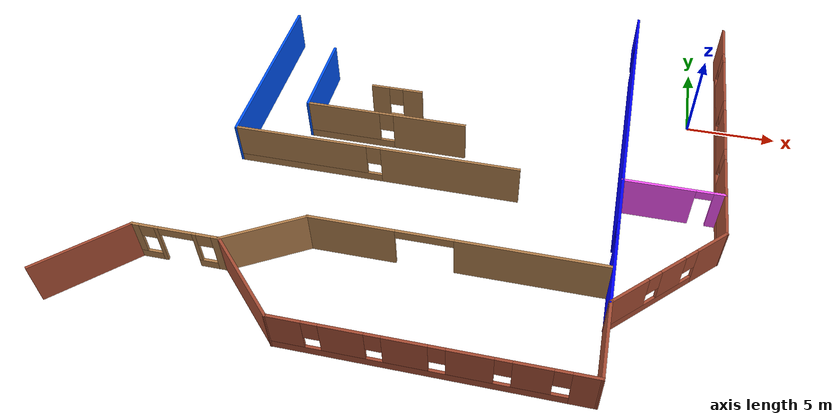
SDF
<sdf version="1.6">
 <model name="spiral_office">
  <pose>-21.9737 -0.990625 0 0 -0 0</pose>
  <link name="Wall_100">
   <pose>20.9892 -6.43138 0 0 -0 3.14159</pose>
   <visual name="Wall_100_Visual_0">
    <pose>-2.35489 0 1.25 0 -0 0</pose>
    <geometry><box><size>0.689225 0.15 2.5</size></box></geometry>
    <material>
     <script><uri>file://media/materials/scripts/gazebo.material</uri><name>Gazebo/Grey</name></script>
     <ambient>1 0.333333 1 1</ambient>
    </material>
    <meta><layer>0</layer></meta>
   </visual>
   <collision name="Wall_100_Collision_0">
    <geometry><box><size>0.689225 0.15 2.5</size></box></geometry>
    <pose>-2.35489 0 1.25 0 -0 0</pose>
   </collision>
   <visual name="Wall_100_Visual_1">
    <pose>0.794612 0 1.25 0 -0 0</pose>
    <geometry><box><size>3.80978 0.15 2.5</size></box></geometry>
    <material>
     <script><uri>file://media/materials/scripts/gazebo.material</uri><name>Gazebo/Grey</name></script>
     <ambient>1 0.333333 1 1</ambient>
    </material>
    <meta><layer>0</layer></meta>
   </visual>
   <collision name="Wall_100_Collision_1">
    <geometry><box><size>3.80978 0.15 2.5</size></box></geometry>
    <pose>0.794612 0 1.25 0 -0 0</pose>
   </collision>
   <visual name="Wall_100_Visual_2">
    <pose>-1.56028 0 2.25 0 -0 0</pose>
    <geometry><box><size>0.9 0.15 0.5</size></box></geometry>
    <material>
     <script><uri>file://media/materials/scripts/gazebo.material</uri><name>Gazebo/Grey</name></script>
     <ambient>1 0.333333 1 1</ambient>
    </material>
    <meta><layer>0</layer></meta>
   </visual>
   <collision name="Wall_100_Collision_2">
    <geometry><box><size>0.9 0.15 0.5</size></box></geometry>
    <pose>-1.56028 0 2.25 0 -0 0</pose>
   </collision>
  </link>
  <link name="Wall_102">
   <pose>10.7001 -12.2894 0 0 -0 3.14159</pose>
   <visual name="Wall_102_Visual_0">
    <pose>-3.79286 0 1.25 0 -0 0</pose>
    <geometry><box><size>7.82905 0.15 2.5</size></box></geometry>
    <material>
     <script><uri>file://media/materials/scripts/gazebo.material</uri><name>Gazebo/Wood</name></script>
     <ambient>1 1 1 1</ambient>
    </material>
    <meta><layer>0</layer></meta>
   </visual>
   <collision name="Wall_102_Collision_0">
    <geometry><box><size>7.82905 0.15 2.5</size></box></geometry>
    <pose>-3.79286 0 1.25 0 -0 0</pose>
   </collision>
   <visual name="Wall_102_Visual_1">
    <pose>5.41453 0 1.25 0 -0 0</pose>
    <geometry><box><size>4.58572 0.15 2.5</size></box></geometry>
    <material>
     <script><uri>file://media/materials/scripts/gazebo.material</uri><name>Gazebo/Wood</name></script>
     <ambient>1 1 1 1</ambient>
    </material>
    <meta><layer>0</layer></meta>
   </visual>
   <collision name="Wall_102_Collision_1">
    <geometry><box><size>4.58572 0.15 2.5</size></box></geometry>
    <pose>5.41453 0 1.25 0 -0 0</pose>
   </collision>
   <visual name="Wall_102_Visual_2">
    <pose>1.62166 0 2.25 0 -0 0</pose>
    <geometry><box><size>3 0.15 0.5</size></box></geometry>
    <material>
     <script><uri>file://media/materials/scripts/gazebo.material</uri><name>Gazebo/Wood</name></script>
     <ambient>1 1 1 1</ambient>
    </material>
    <meta><layer>0</layer></meta>
   </visual>
   <collision name="Wall_102_Collision_2">
    <geometry><box><size>3 0.15 0.5</size></box></geometry>
    <pose>1.62166 0 2.25 0 -0 0</pose>
   </collision>
  </link>
  <link name="Wall_103">
   <collision name="Wall_103_Collision">
    <geometry><box><size>4.56386 0.15 2.5</size></box></geometry>
    <pose>0 0 1.25 0 -0 0</pose>
   </collision>
   <visual name="Wall_103_Visual">
    <pose>0 0 1.25 0 -0 0</pose>
    <geometry><box><size>4.56386 0.15 2.5</size></box></geometry>
    <material>
     <script><uri>file://media/materials/scripts/gazebo.material</uri><name>Gazebo/Wood</name></script>
     <ambient>1 1 1 1</ambient>
    </material>
    <meta><layer>0</layer></meta>
   </visual>
   <pose>1.17619 -13.4264 0 0 0 -2.60036</pose>
  </link>
  <link name="Wall_17">
   <pose>23.6145 -0.624368 0 0 0 -1.5707</pose>
   <visual name="Wall_17_Visual_0">
    <pose>-7.2888 0 1.25 0 -0 0</pose>
    <geometry><box><size>2.42239 0.15 2.5</size></box></geometry>
    <material>
     <script><uri>file://media/materials/scripts/gazebo.material</uri><name>Gazebo/Bricks</name></script>
     <ambient>1 1 1 1</ambient>
    </material>
    <meta><layer>0</layer></meta>
   </visual>
   <collision name="Wall_17_Collision_0">
    <geometry><box><size>2.42239 0.15 2.5</size></box></geometry>
    <pose>-7.2888 0 1.25 0 -0 0</pose>
   </collision>
   <visual name="Wall_17_Visual_1">
    <pose>1.2112 0 0.25 0 -0 0</pose>
    <geometry><box><size>14.5776 0.15 0.5</size></box></geometry>
    <material>
     <script><uri>file://media/materials/scripts/gazebo.material</uri><name>Gazebo/Bricks</name></script>
     <ambient>1 1 1 1</ambient>
    </material>
    <meta><layer>0</layer></meta>
   </visual>
   <collision name="Wall_17_Collision_1">
    <geometry><box><size>14.5776 0.15 0.5</size></box></geometry>
    <pose>1.2112 0 0.25 0 -0 0</pose>
   </collision>
   <visual name="Wall_17_Visual_2">
    <pose>-3.48164 0 1.5 0 -0 0</pose>
    <geometry><box><size>3.59193 0.15 2</size></box></geometry>
    <material>
     <script><uri>file://media/materials/scripts/gazebo.material</uri><name>Gazebo/Bricks</name></script>
     <ambient>1 1 1 1</ambient>
    </material>
    <meta><layer>0</layer></meta>
   </visual>
   <collision name="Wall_17_Collision_2">
    <geometry><box><size>3.59193 0.15 2</size></box></geometry>
    <pose>-3.48164 0 1.5 0 -0 0</pose>
   </collision>
   <visual name="Wall_17_Visual_3">
    <pose>0.737324 0 1.5 0 -0 0</pose>
    <geometry><box><size>3.246 0.15 2</size></box></geometry>
    <material>
     <script><uri>file://media/materials/scripts/gazebo.material</uri><name>Gazebo/Bricks</name></script>
     <ambient>1 1 1 1</ambient>
    </material>
    <meta><layer>0</layer></meta>
   </visual>
   <collision name="Wall_17_Collision_3">
    <geometry><box><size>3.246 0.15 2</size></box></geometry>
    <pose>0.737324 0 1.5 0 -0 0</pose>
   </collision>
   <visual name="Wall_17_Visual_4">
    <pose>5.83016 0 1.5 0 -0 0</pose>
    <geometry><box><size>5.33968 0.15 2</size></box></geometry>
    <material>
     <script><uri>file://media/materials/scripts/gazebo.material</uri><name>Gazebo/Bricks</name></script>
     <ambient>1 1 1 1</ambient>
    </material>
    <meta><layer>0</layer></meta>
   </visual>
   <collision name="Wall_17_Collision_4">
    <geometry><box><size>5.33968 0.15 2</size></box></geometry>
    <pose>5.83016 0 1.5 0 -0 0</pose>
   </collision>
   <visual name="Wall_17_Visual_5">
    <pose>-5.67761 0 1.9 0 -0 0</pose>
    <geometry><box><size>0.8 0.15 1.2</size></box></geometry>
    <material>
     <script><uri>file://media/materials/scripts/gazebo.material</uri><name>Gazebo/Bricks</name></script>
     <ambient>1 1 1 1</ambient>
    </material>
    <meta><layer>0</layer></meta>
   </visual>
   <collision name="Wall_17_Collision_5">
    <geometry><box><size>0.8 0.15 1.2</size></box></geometry>
    <pose>-5.67761 0 1.9 0 -0 0</pose>
   </collision>
   <visual name="Wall_17_Visual_6">
    <pose>-1.28568 0 1.9 0 -0 0</pose>
    <geometry><box><size>0.8 0.15 1.2</size></box></geometry>
    <material>
     <script><uri>file://media/materials/scripts/gazebo.material</uri><name>Gazebo/Bricks</name></script>
     <ambient>1 1 1 1</ambient>
    </material>
    <meta><layer>0</layer></meta>
   </visual>
   <collision name="Wall_17_Collision_6">
    <geometry><box><size>0.8 0.15 1.2</size></box></geometry>
    <pose>-1.28568 0 1.9 0 -0 0</pose>
   </collision>
   <visual name="Wall_17_Visual_7">
    <pose>2.76032 0 1.9 0 -0 0</pose>
    <geometry><box><size>0.8 0.15 1.2</size></box></geometry>
    <material>
     <script><uri>file://media/materials/scripts/gazebo.material</uri><name>Gazebo/Bricks</name></script>
     <ambient>1 1 1 1</ambient>
    </material>
    <meta><layer>0</layer></meta>
   </visual>
   <collision name="Wall_17_Collision_7">
    <geometry><box><size>0.8 0.15 1.2</size></box></geometry>
    <pose>2.76032 0 1.9 0 -0 0</pose>
   </collision>
  </link>
  <link name="Wall_18">
   <pose>20.99 -11.6749 0 0 0 -2.35616</pose>
   <visual name="Wall_18_Visual_0">
    <pose>-2.76411 0 1.25 0 -0 0</pose>
    <geometry><box><size>2.04759 0.15 2.5</size></box></geometry>
    <material>
     <script><uri>file://media/materials/scripts/gazebo.material</uri><name>Gazebo/Bricks</name></script>
     <ambient>1 1 1 1</ambient>
    </material>
    <meta><layer>0</layer></meta>
   </visual>
   <collision name="Wall_18_Collision_0">
    <geometry><box><size>2.04759 0.15 2.5</size></box></geometry>
    <pose>-2.76411 0 1.25 0 -0 0</pose>
   </collision>
   <visual name="Wall_18_Visual_1">
    <pose>1.02379 0 0.25 0 -0 0</pose>
    <geometry><box><size>5.52823 0.15 0.5</size></box></geometry>
    <material>
     <script><uri>file://media/materials/scripts/gazebo.material</uri><name>Gazebo/Bricks</name></script>
     <ambient>1 1 1 1</ambient>
    </material>
    <meta><layer>0</layer></meta>
   </visual>
   <collision name="Wall_18_Collision_1">
    <geometry><box><size>5.52823 0.15 0.5</size></box></geometry>
    <pose>1.02379 0 0.25 0 -0 0</pose>
   </collision>
   <visual name="Wall_18_Visual_2">
    <pose>-0.167532 0 1.5 0 -0 0</pose>
    <geometry><box><size>1.54558 0.15 2</size></box></geometry>
    <material>
     <script><uri>file://media/materials/scripts/gazebo.material</uri><name>Gazebo/Bricks</name></script>
     <ambient>1 1 1 1</ambient>
    </material>
    <meta><layer>0</layer></meta>
   </visual>
   <collision name="Wall_18_Collision_2">
    <geometry><box><size>1.54558 0.15 2</size></box></geometry>
    <pose>-0.167532 0 1.5 0 -0 0</pose>
   </collision>
   <visual name="Wall_18_Visual_3">
    <pose>2.59658 0 1.5 0 -0 0</pose>
    <geometry><box><size>2.38265 0.15 2</size></box></geometry>
    <material>
     <script><uri>file://media/materials/scripts/gazebo.material</uri><name>Gazebo/Bricks</name></script>
     <ambient>1 1 1 1</ambient>
    </material>
    <meta><layer>0</layer></meta>
   </visual>
   <collision name="Wall_18_Collision_3">
    <geometry><box><size>2.38265 0.15 2</size></box></geometry>
    <pose>2.59658 0 1.5 0 -0 0</pose>
   </collision>
   <visual name="Wall_18_Visual_4">
    <pose>-1.34032 0 1.9 0 -0 0</pose>
    <geometry><box><size>0.8 0.15 1.2</size></box></geometry>
    <material>
     <script><uri>file://media/materials/scripts/gazebo.material</uri><name>Gazebo/Bricks</name></script>
     <ambient>1 1 1 1</ambient>
    </material>
    <meta><layer>0</layer></meta>
   </visual>
   <collision name="Wall_18_Collision_4">
    <geometry><box><size>0.8 0.15 1.2</size></box></geometry>
    <pose>-1.34032 0 1.9 0 -0 0</pose>
   </collision>
   <visual name="Wall_18_Visual_5">
    <pose>1.00526 0 1.9 0 -0 0</pose>
    <geometry><box><size>0.8 0.15 1.2</size></box></geometry>
    <material>
     <script><uri>file://media/materials/scripts/gazebo.material</uri><name>Gazebo/Bricks</name></script>
     <ambient>1 1 1 1</ambient>
    </material>
    <meta><layer>0</layer></meta>
   </visual>
   <collision name="Wall_18_Collision_5">
    <geometry><box><size>0.8 0.15 1.2</size></box></geometry>
    <pose>1.00526 0 1.9 0 -0 0</pose>
   </collision>
  </link>
  <link name="Wall_19">
   <collision name="Wall_19_Collision">
    <geometry><box><size>4.25 0.15 2.5</size></box></geometry>
    <pose>0 0 1.25 0 -0 0</pose>
   </collision>
   <visual name="Wall_19_Visual">
    <pose>0 0 1.25 0 -0 0</pose>
    <geometry><box><size>4.25 0.15 2.5</size></box></geometry>
    <material>
     <script><uri>file://media/materials/scripts/gazebo.material</uri><name>Gazebo/Bricks</name></script>
     <ambient>1 1 1 1</ambient>
    </material>
    <meta><layer>0</layer></meta>
   </visual>
   <pose>18.3647 -16.3504 0 0 0 -1.5708</pose>
  </link>
  <link name="Wall_20">
   <pose>10.7162 -18.3734 0 0 -0 3.13806</pose>
   <visual name="Wall_20_Visual_0">
    <pose>-7.04407 0 1.25 0 -0 0</pose>
    <geometry><box><size>1.35851 0.15 2.5</size></box></geometry>
    <material>
     <script><uri>file://media/materials/scripts/gazebo.material</uri><name>Gazebo/Bricks</name></script>
     <ambient>1 1 1 1</ambient>
    </material>
    <meta><layer>0</layer></meta>
   </visual>
   <collision name="Wall_20_Collision_0">
    <geometry><box><size>1.35851 0.15 2.5</size></box></geometry>
    <pose>-7.04407 0 1.25 0 -0 0</pose>
   </collision>
   <visual name="Wall_20_Visual_1">
    <pose>0.679257 0 0.25 0 -0 0</pose>
    <geometry><box><size>14.0881 0.15 0.5</size></box></geometry>
    <material>
     <script><uri>file://media/materials/scripts/gazebo.material</uri><name>Gazebo/Bricks</name></script>
     <ambient>1 1 1 1</ambient>
    </material>
    <meta><layer>0</layer></meta>
   </visual>
   <collision name="Wall_20_Collision_1">
    <geometry><box><size>14.0881 0.15 0.5</size></box></geometry>
    <pose>0.679257 0 0.25 0 -0 0</pose>
   </collision>
   <visual name="Wall_20_Visual_2">
    <pose>-4.65396 0 1.5 0 -0 0</pose>
    <geometry><box><size>1.8217 0.15 2</size></box></geometry>
    <material>
     <script><uri>file://media/materials/scripts/gazebo.material</uri><name>Gazebo/Bricks</name></script>
     <ambient>1 1 1 1</ambient>
    </material>
    <meta><layer>0</layer></meta>
   </visual>
   <collision name="Wall_20_Collision_2">
    <geometry><box><size>1.8217 0.15 2</size></box></geometry>
    <pose>-4.65396 0 1.5 0 -0 0</pose>
   </collision>
   <visual name="Wall_20_Visual_3">
    <pose>-1.84491 0 1.5 0 -0 0</pose>
    <geometry><box><size>2.19639 0.15 2</size></box></geometry>
    <material>
     <script><uri>file://media/materials/scripts/gazebo.material</uri><name>Gazebo/Bricks</name></script>
     <ambient>1 1 1 1</ambient>
    </material>
    <meta><layer>0</layer></meta>
   </visual>
   <collision name="Wall_20_Collision_3">
    <geometry><box><size>2.19639 0.15 2</size></box></geometry>
    <pose>-1.84491 0 1.5 0 -0 0</pose>
   </collision>
   <visual name="Wall_20_Visual_4">
    <pose>1.12473 0 1.5 0 -0 0</pose>
    <geometry><box><size>2.14289 0.15 2</size></box></geometry>
    <material>
     <script><uri>file://media/materials/scripts/gazebo.material</uri><name>Gazebo/Bricks</name></script>
     <ambient>1 1 1 1</ambient>
    </material>
    <meta><layer>0</layer></meta>
   </visual>
   <collision name="Wall_20_Collision_4">
    <geometry><box><size>2.14289 0.15 2</size></box></geometry>
    <pose>1.12473 0 1.5 0 -0 0</pose>
   </collision>
   <visual name="Wall_20_Visual_5">
    <pose>4.06762 0 1.5 0 -0 0</pose>
    <geometry><box><size>2.14289 0.15 2</size></box></geometry>
    <material>
     <script><uri>file://media/materials/scripts/gazebo.material</uri><name>Gazebo/Bricks</name></script>
     <ambient>1 1 1 1</ambient>
    </material>
    <meta><layer>0</layer></meta>
   </visual>
   <collision name="Wall_20_Collision_5">
    <geometry><box><size>2.14289 0.15 2</size></box></geometry>
    <pose>4.06762 0 1.5 0 -0 0</pose>
   </collision>
   <visual name="Wall_20_Visual_6">
    <pose>6.8312 0 1.5 0 -0 0</pose>
    <geometry><box><size>1.78426 0.15 2</size></box></geometry>
    <material>
     <script><uri>file://media/materials/scripts/gazebo.material</uri><name>Gazebo/Bricks</name></script>
     <ambient>1 1 1 1</ambient>
    </material>
    <meta><layer>0</layer></meta>
   </visual>
   <collision name="Wall_20_Collision_6">
    <geometry><box><size>1.78426 0.15 2</size></box></geometry>
    <pose>6.8312 0 1.5 0 -0 0</pose>
   </collision>
   <visual name="Wall_20_Visual_7">
    <pose>-5.96481 0 1.9 0 -0 0</pose>
    <geometry><box><size>0.8 0.15 1.2</size></box></geometry>
    <material>
     <script><uri>file://media/materials/scripts/gazebo.material</uri><name>Gazebo/Bricks</name></script>
     <ambient>1 1 1 1</ambient>
    </material>
    <meta><layer>0</layer></meta>
   </visual>
   <collision name="Wall_20_Collision_7">
    <geometry><box><size>0.8 0.15 1.2</size></box></geometry>
    <pose>-5.96481 0 1.9 0 -0 0</pose>
   </collision>
   <visual name="Wall_20_Visual_8">
    <pose>-3.34311 0 1.9 0 -0 0</pose>
    <geometry><box><size>0.8 0.15 1.2</size></box></geometry>
    <material>
     <script><uri>file://media/materials/scripts/gazebo.material</uri><name>Gazebo/Bricks</name></script>
     <ambient>1 1 1 1</ambient>
    </material>
    <meta><layer>0</layer></meta>
   </visual>
   <collision name="Wall_20_Collision_8">
    <geometry><box><size>0.8 0.15 1.2</size></box></geometry>
    <pose>-3.34311 0 1.9 0 -0 0</pose>
   </collision>
   <visual name="Wall_20_Visual_9">
    <pose>-0.346715 0 1.9 0 -0 0</pose>
    <geometry><box><size>0.8 0.15 1.2</size></box></geometry>
    <material>
     <script><uri>file://media/materials/scripts/gazebo.material</uri><name>Gazebo/Bricks</name></script>
     <ambient>1 1 1 1</ambient>
    </material>
    <meta><layer>0</layer></meta>
   </visual>
   <collision name="Wall_20_Collision_9">
    <geometry><box><size>0.8 0.15 1.2</size></box></geometry>
    <pose>-0.346715 0 1.9 0 -0 0</pose>
   </collision>
   <visual name="Wall_20_Visual_10">
    <pose>2.59618 0 1.9 0 -0 0</pose>
    <geometry><box><size>0.8 0.15 1.2</size></box></geometry>
    <material>
     <script><uri>file://media/materials/scripts/gazebo.material</uri><name>Gazebo/Bricks</name></script>
     <ambient>1 1 1 1</ambient>
    </material>
    <meta><layer>0</layer></meta>
   </visual>
   <collision name="Wall_20_Collision_10">
    <geometry><box><size>0.8 0.15 1.2</size></box></geometry>
    <pose>2.59618 0 1.9 0 -0 0</pose>
   </collision>
   <visual name="Wall_20_Visual_11">
    <pose>5.53907 0 1.9 0 -0 0</pose>
    <geometry><box><size>0.8 0.15 1.2</size></box></geometry>
    <material>
     <script><uri>file://media/materials/scripts/gazebo.material</uri><name>Gazebo/Bricks</name></script>
     <ambient>1 1 1 1</ambient>
    </material>
    <meta><layer>0</layer></meta>
   </visual>
   <collision name="Wall_20_Collision_11">
    <geometry><box><size>0.8 0.15 1.2</size></box></geometry>
    <pose>5.53907 0 1.9 0 -0 0</pose>
   </collision>
  </link>
  <link name="Wall_21">
   <collision name="Wall_21_Collision">
    <geometry><box><size>5.5 0.15 2.5</size></box></geometry>
    <pose>0 0 1.25 0 -0 0</pose>
   </collision>
   <visual name="Wall_21_Visual">
    <pose>0 0 1.25 0 -0 0</pose>
    <geometry><box><size>5.5 0.15 2.5</size></box></geometry>
    <material>
     <script><uri>file://media/materials/scripts/gazebo.material</uri><name>Gazebo/Bricks</name></script>
     <ambient>1 1 1 1</ambient>
    </material>
    <meta><layer>0</layer></meta>
   </visual>
   <pose>1.17619 -16.4549 0 0 -0 2.35619</pose>
  </link>
  <link name="Wall_22">
   <pose>-3.0151 -14.5635 0 0 0 -3.14155</pose>
   <visual name="Wall_22_Visual_0">
    <pose>-2.1319 0 1.25 0 -0 0</pose>
    <geometry><box><size>0.486208 0.15 2.5</size></box></geometry>
    <material>
     <script><uri>file://media/materials/scripts/gazebo.material</uri><name>Gazebo/Wood</name></script>
     <ambient>1 1 1 1</ambient>
    </material>
    <meta><layer>0</layer></meta>
   </visual>
   <collision name="Wall_22_Collision_0">
    <geometry><box><size>0.486208 0.15 2.5</size></box></geometry>
    <pose>-2.1319 0 1.25 0 -0 0</pose>
   </collision>
   <visual name="Wall_22_Visual_1">
    <pose>1.01121 0 1.25 0 -0 0</pose>
    <geometry><box><size>0.2 0.15 2.5</size></box></geometry>
    <material>
     <script><uri>file://media/materials/scripts/gazebo.material</uri><name>Gazebo/Wood</name></script>
     <ambient>1 1 1 1</ambient>
    </material>
    <meta><layer>0</layer></meta>
   </visual>
   <collision name="Wall_22_Collision_1">
    <geometry><box><size>0.2 0.15 2.5</size></box></geometry>
    <pose>1.01121 0 1.25 0 -0 0</pose>
   </collision>
   <visual name="Wall_22_Visual_2">
    <pose>-1.38879 0 0.25 0 -0 0</pose>
    <geometry><box><size>1 0.15 0.5</size></box></geometry>
    <material>
     <script><uri>file://media/materials/scripts/gazebo.material</uri><name>Gazebo/Wood</name></script>
     <ambient>1 1 1 1</ambient>
    </material>
    <meta><layer>0</layer></meta>
   </visual>
   <collision name="Wall_22_Collision_2">
    <geometry><box><size>1 0.15 0.5</size></box></geometry>
    <pose>-1.38879 0 0.25 0 -0 0</pose>
   </collision>
   <visual name="Wall_22_Visual_3">
    <pose>1.7431 0 0.25 0 -0 0</pose>
    <geometry><box><size>1.26379 0.15 0.5</size></box></geometry>
    <material>
     <script><uri>file://media/materials/scripts/gazebo.material</uri><name>Gazebo/Wood</name></script>
     <ambient>1 1 1 1</ambient>
    </material>
    <meta><layer>0</layer></meta>
   </visual>
   <collision name="Wall_22_Collision_3">
    <geometry><box><size>1.26379 0.15 0.5</size></box></geometry>
    <pose>1.7431 0 0.25 0 -0 0</pose>
   </collision>
   <visual name="Wall_22_Visual_4">
    <pose>-0.988792 0 1.5 0 -0 0</pose>
    <geometry><box><size>0.2 0.15 2</size></box></geometry>
    <material>
     <script><uri>file://media/materials/scripts/gazebo.material</uri><name>Gazebo/Wood</name></script>
     <ambient>1 1 1 1</ambient>
    </material>
    <meta><layer>0</layer></meta>
   </visual>
   <collision name="Wall_22_Collision_4">
    <geometry><box><size>0.2 0.15 2</size></box></geometry>
    <pose>-0.988792 0 1.5 0 -0 0</pose>
   </collision>
   <visual name="Wall_22_Visual_5">
    <pose>-0.988792 0 1.5 0 -0 0</pose>
    <geometry><box><size>0.2 0.15 2</size></box></geometry>
    <material>
     <script><uri>file://media/materials/scripts/gazebo.material</uri><name>Gazebo/Wood</name></script>
     <ambient>1 1 1 1</ambient>
    </material>
    <meta><layer>0</layer></meta>
   </visual>
   <collision name="Wall_22_Collision_5">
    <geometry><box><size>0.2 0.15 2</size></box></geometry>
    <pose>-0.988792 0 1.5 0 -0 0</pose>
   </collision>
   <visual name="Wall_22_Visual_6">
    <pose>2.1431 0 1.5 0 -0 0</pose>
    <geometry><box><size>0.463792 0.15 2</size></box></geometry>
    <material>
     <script><uri>file://media/materials/scripts/gazebo.material</uri><name>Gazebo/Wood</name></script>
     <ambient>1 1 1 1</ambient>
    </material>
    <meta><layer>0</layer></meta>
   </visual>
   <collision name="Wall_22_Collision_6">
    <geometry><box><size>0.463792 0.15 2</size></box></geometry>
    <pose>2.1431 0 1.5 0 -0 0</pose>
   </collision>
   <visual name="Wall_22_Visual_7">
    <pose>-1.48879 0 2.1 0 -0 0</pose>
    <geometry><box><size>0.8 0.15 0.8</size></box></geometry>
    <material>
     <script><uri>file://media/materials/scripts/gazebo.material</uri><name>Gazebo/Wood</name></script>
     <ambient>1 1 1 1</ambient>
    </material>
    <meta><layer>0</layer></meta>
   </visual>
   <collision name="Wall_22_Collision_7">
    <geometry><box><size>0.8 0.15 0.8</size></box></geometry>
    <pose>-1.48879 0 2.1 0 -0 0</pose>
   </collision>
   <visual name="Wall_22_Visual_8">
    <pose>1.51121 0 2.1 0 -0 0</pose>
    <geometry><box><size>0.8 0.15 0.8</size></box></geometry>
    <material>
     <script><uri>file://media/materials/scripts/gazebo.material</uri><name>Gazebo/Wood</name></script>
     <ambient>1 1 1 1</ambient>
    </material>
    <meta><layer>0</layer></meta>
   </visual>
   <collision name="Wall_22_Collision_8">
    <geometry><box><size>0.8 0.15 0.8</size></box></geometry>
    <pose>1.51121 0 2.1 0 -0 0</pose>
   </collision>
   <visual name="Wall_22_Visual_9">
    <pose>0.011208 0 2.25 0 -0 0</pose>
    <geometry><box><size>1.8 0.15 0.5</size></box></geometry>
    <material>
     <script><uri>file://media/materials/scripts/gazebo.material</uri><name>Gazebo/Wood</name></script>
     <ambient>1 1 1 1</ambient>
    </material>
    <meta><layer>0</layer></meta>
   </visual>
   <collision name="Wall_22_Collision_9">
    <geometry><box><size>1.8 0.15 0.5</size></box></geometry>
    <pose>0.011208 0 2.25 0 -0 0</pose>
   </collision>
   <visual name="Wall_22_Visual_10">
    <pose>0.011208 0 2.25 0 -0 0</pose>
    <geometry><box><size>1.8 0.15 0.5</size></box></geometry>
    <material>
     <script><uri>file://media/materials/scripts/gazebo.material</uri><name>Gazebo/Wood</name></script>
     <ambient>1 1 1 1</ambient>
    </material>
    <meta><layer>0</layer></meta>
   </visual>
   <collision name="Wall_22_Collision_10">
    <geometry><box><size>1.8 0.15 0.5</size></box></geometry>
    <pose>0.011208 0 2.25 0 -0 0</pose>
   </collision>
  </link>
  <link name="Wall_23">
   <collision name="Wall_23_Collision">
    <geometry><box><size>5.25 0.15 2.5</size></box></geometry>
    <pose>0 0 1.25 0 -0 0</pose>
   </collision>
   <visual name="Wall_23_Visual">
    <pose>0 0 1.25 0 -0 0</pose>
    <geometry><box><size>5.25 0.15 2.5</size></box></geometry>
    <material>
     <script><uri>file://media/materials/scripts/gazebo.material</uri><name>Gazebo/Bricks</name></script>
     <ambient>1 1 1 1</ambient>
    </material>
    <meta><layer>0</layer></meta>
   </visual>
   <pose>-7.11801 -16.3667 0 0 0 -2.35619</pose>
  </link>
  <link name="Wall_41">
   <pose>5.02084 -6.86111 0 0 -0 3.14159</pose>
   <visual name="Wall_41_Visual_0">
    <pose>-4.17643 0 1.25 0 -0 0</pose>
    <geometry><box><size>7.64715 0.15 2.5</size></box></geometry>
    <material>
     <script><uri>file://media/materials/scripts/gazebo.material</uri><name>Gazebo/Wood</name></script>
     <ambient>1 1 1 1</ambient>
    </material>
    <meta><layer>0</layer></meta>
   </visual>
   <collision name="Wall_41_Collision_0">
    <geometry><box><size>7.64715 0.15 2.5</size></box></geometry>
    <pose>-4.17643 0 1.25 0 -0 0</pose>
   </collision>
   <visual name="Wall_41_Visual_1">
    <pose>3.82357 0 0.25 0 -0 0</pose>
    <geometry><box><size>8.35285 0.15 0.5</size></box></geometry>
    <material>
     <script><uri>file://media/materials/scripts/gazebo.material</uri><name>Gazebo/Wood</name></script>
     <ambient>1 1 1 1</ambient>
    </material>
    <meta><layer>0</layer></meta>
   </visual>
   <collision name="Wall_41_Collision_1">
    <geometry><box><size>8.35285 0.15 0.5</size></box></geometry>
    <pose>3.82357 0 0.25 0 -0 0</pose>
   </collision>
   <visual name="Wall_41_Visual_2">
    <pose>4.22357 0 1.5 0 -0 0</pose>
    <geometry><box><size>7.55285 0.15 2</size></box></geometry>
    <material>
     <script><uri>file://media/materials/scripts/gazebo.material</uri><name>Gazebo/Wood</name></script>
     <ambient>1 1 1 1</ambient>
    </material>
    <meta><layer>0</layer></meta>
   </visual>
   <collision name="Wall_41_Collision_2">
    <geometry><box><size>7.55285 0.15 2</size></box></geometry>
    <pose>4.22357 0 1.5 0 -0 0</pose>
   </collision>
   <visual name="Wall_41_Visual_3">
    <pose>0.047146 0 1.9 0 -0 0</pose>
    <geometry><box><size>0.8 0.15 1.2</size></box></geometry>
    <material>
     <script><uri>file://media/materials/scripts/gazebo.material</uri><name>Gazebo/Wood</name></script>
     <ambient>1 1 1 1</ambient>
    </material>
    <meta><layer>0</layer></meta>
   </visual>
   <collision name="Wall_41_Collision_3">
    <geometry><box><size>0.8 0.15 1.2</size></box></geometry>
    <pose>0.047146 0 1.9 0 -0 0</pose>
   </collision>
  </link>
  <link name="Wall_42">
   <collision name="Wall_42_Collision">
    <geometry><box><size>10.75 0.15 2.5</size></box></geometry>
    <pose>0 0 1.25 0 -0 0</pose>
   </collision>
   <visual name="Wall_42_Visual">
    <pose>0 0 1.25 0 -0 0</pose>
    <geometry><box><size>10.75 0.15 2.5</size></box></geometry>
    <material>
     <script><uri>file://media/materials/scripts/gazebo.material</uri><name>Gazebo/Grey</name></script>
     <ambient>0 0.333333 1 1</ambient>
    </material>
    <meta><layer>0</layer></meta>
   </visual>
   <pose>-2.90416 -1.56111 0 0 -0 1.5708</pose>
  </link>
  <link name="Wall_45">
   <pose>4.89584 -4.11111 0 0 -0 3.14159</pose>
   <visual name="Wall_45_Visual_0">
    <pose>-2.55143 0 1.25 0 -0 0</pose>
    <geometry><box><size>4.14715 0.15 2.5</size></box></geometry>
    <material>
     <script><uri>file://media/materials/scripts/gazebo.material</uri><name>Gazebo/Wood</name></script>
     <ambient>1 1 1 1</ambient>
    </material>
    <meta><layer>0</layer></meta>
   </visual>
   <collision name="Wall_45_Collision_0">
    <geometry><box><size>4.14715 0.15 2.5</size></box></geometry>
    <pose>-2.55143 0 1.25 0 -0 0</pose>
   </collision>
   <visual name="Wall_45_Visual_1">
    <pose>2.07357 0 0.25 0 -0 0</pose>
    <geometry><box><size>5.10285 0.15 0.5</size></box></geometry>
    <material>
     <script><uri>file://media/materials/scripts/gazebo.material</uri><name>Gazebo/Wood</name></script>
     <ambient>1 1 1 1</ambient>
    </material>
    <meta><layer>0</layer></meta>
   </visual>
   <collision name="Wall_45_Collision_1">
    <geometry><box><size>5.10285 0.15 0.5</size></box></geometry>
    <pose>2.07357 0 0.25 0 -0 0</pose>
   </collision>
   <visual name="Wall_45_Visual_2">
    <pose>2.47357 0 1.5 0 -0 0</pose>
    <geometry><box><size>4.30285 0.15 2</size></box></geometry>
    <material>
     <script><uri>file://media/materials/scripts/gazebo.material</uri><name>Gazebo/Wood</name></script>
     <ambient>1 1 1 1</ambient>
    </material>
    <meta><layer>0</layer></meta>
   </visual>
   <collision name="Wall_45_Collision_2">
    <geometry><box><size>4.30285 0.15 2</size></box></geometry>
    <pose>2.47357 0 1.5 0 -0 0</pose>
   </collision>
   <visual name="Wall_45_Visual_3">
    <pose>-0.077854 0 1.9 0 -0 0</pose>
    <geometry><box><size>0.8 0.15 1.2</size></box></geometry>
    <material>
     <script><uri>file://media/materials/scripts/gazebo.material</uri><name>Gazebo/Wood</name></script>
     <ambient>1 1 1 1</ambient>
    </material>
    <meta><layer>0</layer></meta>
   </visual>
   <collision name="Wall_45_Collision_3">
    <geometry><box><size>0.8 0.15 1.2</size></box></geometry>
    <pose>-0.077854 0 1.9 0 -0 0</pose>
   </collision>
  </link>
  <link name="Wall_46">
   <collision name="Wall_46_Collision">
    <geometry><box><size>5.25 0.15 2.5</size></box></geometry>
    <pose>0 0 1.25 0 -0 0</pose>
   </collision>
   <visual name="Wall_46_Visual">
    <pose>0 0 1.25 0 -0 0</pose>
    <geometry><box><size>5.25 0.15 2.5</size></box></geometry>
    <material>
     <script><uri>file://media/materials/scripts/gazebo.material</uri><name>Gazebo/Grey</name></script>
     <ambient>0 0.333333 1 1</ambient>
    </material>
    <meta><layer>0</layer></meta>
   </visual>
   <pose>0.345839 -1.56111 0 0 -0 1.5708</pose>
  </link>
  <link name="Wall_49">
   <pose>5.02084 -1.86111 0 0 -0 3.14159</pose>
   <visual name="Wall_49_Visual_0">
    <pose>-0.924443 0 1.25 0 -0 0</pose>
    <geometry><box><size>1.15111 0.15 2.5</size></box></geometry>
    <material>
     <script><uri>file://media/materials/scripts/gazebo.material</uri><name>Gazebo/Wood</name></script>
     <ambient>1 1 1 1</ambient>
    </material>
    <meta><layer>0</layer></meta>
   </visual>
   <collision name="Wall_49_Collision_0">
    <geometry><box><size>1.15111 0.15 2.5</size></box></geometry>
    <pose>-0.924443 0 1.25 0 -0 0</pose>
   </collision>
   <visual name="Wall_49_Visual_1">
    <pose>0.575557 0 0.25 0 -0 0</pose>
    <geometry><box><size>1.84889 0.15 0.5</size></box></geometry>
    <material>
     <script><uri>file://media/materials/scripts/gazebo.material</uri><name>Gazebo/Wood</name></script>
     <ambient>1 1 1 1</ambient>
    </material>
    <meta><layer>0</layer></meta>
   </visual>
   <collision name="Wall_49_Collision_1">
    <geometry><box><size>1.84889 0.15 0.5</size></box></geometry>
    <pose>0.575557 0 0.25 0 -0 0</pose>
   </collision>
   <visual name="Wall_49_Visual_2">
    <pose>0.975557 0 1.5 0 -0 0</pose>
    <geometry><box><size>1.04889 0.15 2</size></box></geometry>
    <material>
     <script><uri>file://media/materials/scripts/gazebo.material</uri><name>Gazebo/Wood</name></script>
     <ambient>1 1 1 1</ambient>
    </material>
    <meta><layer>0</layer></meta>
   </visual>
   <collision name="Wall_49_Collision_2">
    <geometry><box><size>1.04889 0.15 2</size></box></geometry>
    <pose>0.975557 0 1.5 0 -0 0</pose>
   </collision>
   <visual name="Wall_49_Visual_3">
    <pose>0.051113 0 1.9 0 -0 0</pose>
    <geometry><box><size>0.8 0.15 1.2</size></box></geometry>
    <material>
     <script><uri>file://media/materials/scripts/gazebo.material</uri><name>Gazebo/Wood</name></script>
     <ambient>1 1 1 1</ambient>
    </material>
    <meta><layer>0</layer></meta>
   </visual>
   <collision name="Wall_49_Collision_3">
    <geometry><box><size>0.8 0.15 1.2</size></box></geometry>
    <pose>0.051113 0 1.9 0 -0 0</pose>
   </collision>
  </link>
  <link name="Wall_98">
   <pose>18.3647 -3.24937 0 0 0 -1.5708</pose>
   <visual name="Wall_98_Visual_0">
    <pose>-9.99903 0 1.25 0 -0 0</pose>
    <geometry><box><size>2.25194 0.15 2.5</size></box></geometry>
    <material>
     <script><uri>file://media/materials/scripts/gazebo.material</uri><name>Gazebo/Grey</name></script>
     <ambient>0 0 1 1</ambient>
    </material>
    <meta><layer>0</layer></meta>
   </visual>
   <collision name="Wall_98_Collision_0">
    <geometry><box><size>2.25194 0.15 2.5</size></box></geometry>
    <pose>-9.99903 0 1.25 0 -0 0</pose>
   </collision>
   <visual name="Wall_98_Visual_1">
    <pose>-0.932708 0 1.25 0 -0 0</pose>
    <geometry><box><size>14.0807 0.15 2.5</size></box></geometry>
    <material>
     <script><uri>file://media/materials/scripts/gazebo.material</uri><name>Gazebo/Grey</name></script>
     <ambient>0 0 1 1</ambient>
    </material>
    <meta><layer>0</layer></meta>
   </visual>
   <collision name="Wall_98_Collision_1">
    <geometry><box><size>14.0807 0.15 2.5</size></box></geometry>
    <pose>-0.932708 0 1.25 0 -0 0</pose>
   </collision>
   <visual name="Wall_98_Visual_2">
    <pose>9.06632 0 1.25 0 -0 0</pose>
    <geometry><box><size>4.11736 0.15 2.5</size></box></geometry>
    <material>
     <script><uri>file://media/materials/scripts/gazebo.material</uri><name>Gazebo/Grey</name></script>
     <ambient>0 0 1 1</ambient>
    </material>
    <meta><layer>0</layer></meta>
   </visual>
   <collision name="Wall_98_Collision_2">
    <geometry><box><size>4.11736 0.15 2.5</size></box></geometry>
    <pose>9.06632 0 1.25 0 -0 0</pose>
   </collision>
   <visual name="Wall_98_Visual_3">
    <pose>-8.42306 0 2.25 0 -0 0</pose>
    <geometry><box><size>0.9 0.15 0.5</size></box></geometry>
    <material>
     <script><uri>file://media/materials/scripts/gazebo.material</uri><name>Gazebo/Grey</name></script>
     <ambient>0 0 1 1</ambient>
    </material>
    <meta><layer>0</layer></meta>
   </visual>
   <collision name="Wall_98_Collision_3">
    <geometry><box><size>0.9 0.15 0.5</size></box></geometry>
    <pose>-8.42306 0 2.25 0 -0 0</pose>
   </collision>
   <visual name="Wall_98_Visual_4">
    <pose>6.55764 0 2.25 0 -0 0</pose>
    <geometry><box><size>0.9 0.15 0.5</size></box></geometry>
    <material>
     <script><uri>file://media/materials/scripts/gazebo.material</uri><name>Gazebo/Grey</name></script>
     <ambient>0 0 1 1</ambient>
    </material>
    <meta><layer>0</layer></meta>
   </visual>
   <collision name="Wall_98_Collision_4">
    <geometry><box><size>0.9 0.15 0.5</size></box></geometry>
    <pose>6.55764 0 2.25 0 -0 0</pose>
   </collision>
  </link>
  <static>1</static>
 </model>
</sdf>
